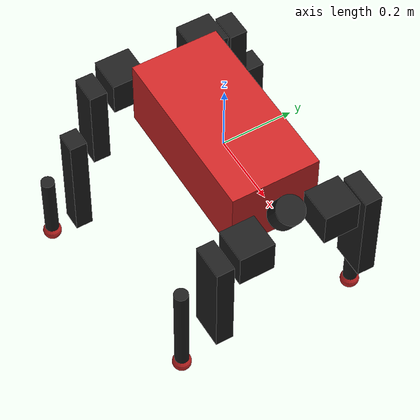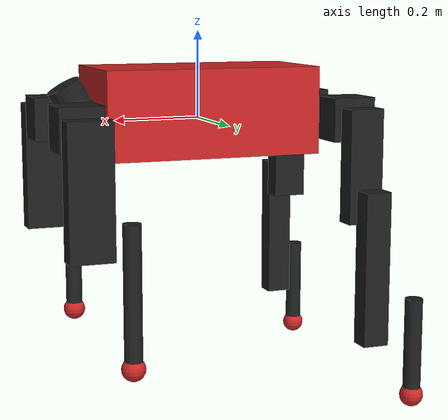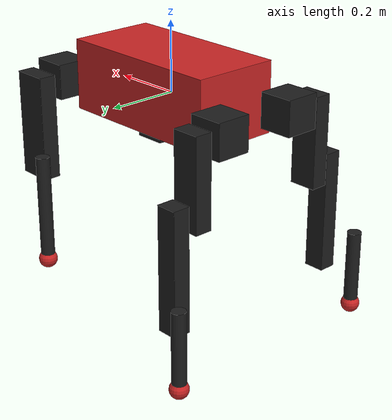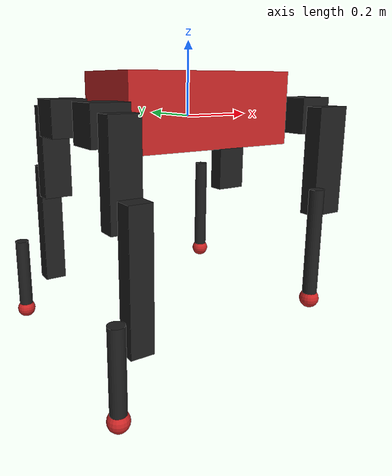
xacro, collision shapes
<?xml version="1.0" encoding="utf-8"?>
<robot xmlns:xacro="http://ros.org/wiki/xacro" name="ContinuO">

  <!-- To make the robot fly -->
  <!-- Wingardium leviossssssssssssssssssa -->

  <!-- INCLUSIONS -->
  <xacro:include filename="$(find f_quadruped_control)/urdf/materials.xacro" />
  <xacro:include filename="$(find f_quadruped_control)/urdf/sensors.xacro" />
  <xacro:include filename="$(find f_quadruped_control)/urdf/legs.xacro" />
  <xacro:include filename="$(find f_quadruped_control)/urdf/transmissions.xacro" />
  <xacro:include filename="$(find f_quadruped_control)/urdf/gazebo.xacro" />

  <!-- LIEN DE BASE -->
  <link name="base_link" />

  <joint name="dummy_joint" type="fixed">
    <parent link="base_link" />
    <child link="base" />
  </joint>

  <link name="base">
    <inertial>
      <origin xyz="-0.02 0.000061 0.008445" rpy="0 0 0" />
      <mass value="15.342" />
      <inertia ixx="0.131477" ixy="-0.000035" ixz="0.000257"
        iyy="0.328587" iyz="0.000031" izz="0.423802" />
    </inertial>
    <visual>
      <origin xyz="0 0 0" rpy="0 0 0" />
      <geometry>
        <mesh filename="package://f_quadruped_control/meshes/base.dae" />
      </geometry>
      <material name="red" />
    </visual>
    <collision>
      <origin xyz="0 0 0.02" rpy="0 0 0" />
      <geometry>
        <box size="0.5 0.25 0.2" />
      </geometry>
    </collision>
  </link>

</robot>

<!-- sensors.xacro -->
<robot xmlns:xacro="http://ros.org/wiki/xacro">

  <!-- LIDAR OUSTER -->
  <link name="os_sensor">
    <inertial>
      <origin xyz="0 0 0" rpy="0 0 0" />
      <mass value="0.425" />
      <inertia ixx="0.0001" ixy="0" ixz="0" iyy="0.0001" iyz="0" izz="0.0001" />
    </inertial>
    <visual>
      <origin xyz="0 0 0" rpy="0 0 0" />
      <geometry>
        <cylinder radius="0.04" length="0.073" />
      </geometry>
      <material name="black" />
    </visual>
    <collision>
      <origin xyz="0 0 0" rpy="0 0 0" />
      <geometry>
        <cylinder radius="0.04" length="0.073" />
      </geometry>
    </collision>
  </link>

  <joint name="base_to_lidar" type="fixed">
    <origin xyz="0.3 0 0.05" rpy="0 0.52 0" />
    <parent link="base" />
    <child link="os_sensor" />
  </joint>

  <!-- IMU -->
  <link name="imu_link">
    <inertial>
      <origin xyz="0 0 0" rpy="0 0 0" />
      <mass value="0.001" />
      <inertia ixx="1e-6" ixy="0" ixz="0" iyy="1e-6" iyz="0" izz="1e-6" />
    </inertial>
    <visual>
      <origin xyz="0 0 0" rpy="0 0 0" />
      <geometry>
        <sphere radius="0.01" />
      </geometry>
    </visual>
    <collision>
      <origin xyz="0 0 0" rpy="0 0 0" />
      <geometry>
        <sphere radius="0.011" />
      </geometry>
    </collision>
  </link>

  <joint name="imu_joint" type="fixed">
    <origin xyz="0 0 0.05" rpy="0 0 0" />
    <parent link="base" />
    <child link="imu_link" />
  </joint>

</robot>

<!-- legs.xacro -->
<robot xmlns:xacro="http://ros.org/wiki/xacro">

  <!-- ======================== FRONT LEFT (FL) ======================== -->
  <link name="FL_SHOULDER">
    <inertial>
      <origin xyz="0.051772 0.021258 -0.000161" rpy="0 0 0" />
      <mass value="1.276" />
      <inertia ixx="0.001862" ixy="0.000034" ixz="0.000001" iyy="0.001745" iyz="0.000000"
        izz="0.001887" />
    </inertial>
    <visual>
      <origin xyz="0 0 0" rpy="0 0 0" />
      <geometry>
        <mesh filename="package://quadruped_description/meshes/FL_SHOULDER.dae" />
      </geometry>
      <material name="black" />
    </visual>
    <collision>
      <origin xyz="0.054 0 0" rpy="0 0 0" />
      <geometry>
        <box size="0.1 0.1 0.1" />
      </geometry>
    </collision>
  </link>
  <joint name="FL_HAA" type="revolute">
    <origin xyz="0.2635 0.12291 0" rpy="0 0 0" />
    <parent link="base" />
    <child link="FL_SHOULDER" />
    <axis xyz="1 0 0" />
    <dynamics damping="0.7" friction="0.0" />
    <limit lower="-3.14" upper="3.14" effort="125.0" velocity="16.75" />
  </joint>

  <link name="FL_UPPER_LEG">
    <inertial>
      <origin xyz="0.000009 0.025634 -0.165001" rpy="0 0 0" />
      <mass value="1.367" />
      <inertia ixx="0.016273" ixy="-0.000000" ixz="0.000012" iyy="0.016691" iyz="0.000130"
        izz="0.001167" />
    </inertial>
    <visual>
      <origin xyz="0 0 0" rpy="0 0 0" />
      <geometry>
        <mesh filename="package://quadruped_description/meshes/FL_UPPER_LEG.dae" />
      </geometry>
      <material name="black2" />
    </visual>
    <collision>
      <origin xyz="0 0.032 -0.1232" rpy="0 0 0" />
      <geometry>
        <box size="0.1 0.05 0.3" />
      </geometry>
    </collision>
  </link>
  <joint name="FL_HFE" type="revolute">
    <origin xyz="0.053259 0.061836 -0.0001687" rpy="0 0 0" />
    <parent link="FL_SHOULDER" />
    <child link="FL_UPPER_LEG" />
    <axis xyz="0 1 0" />
    <dynamics damping="0.9" friction="0.0" />
    <limit lower="-3.14" upper="3.14" effort="120.0" velocity="23.04" />
  </joint>

  <link name="FL_LOWER_LEG">
    <inertial>
      <origin xyz="-0.041308 0.034919 -0.047598" rpy="0 0 0" />
      <mass value="0.759" />
      <inertia ixx="0.007966" ixy="-0.000009" ixz="0.001312" iyy="0.009247" iyz="-0.000002"
        izz="0.001638" />
    </inertial>
    <visual>
      <origin xyz="0 0 0" rpy="0 0 0" />
      <geometry>
        <mesh filename="package://quadruped_description/meshes/FL_LOWER_LEG.dae" />
      </geometry>
      <material name="black3" />
    </visual>
    <collision>
      <origin xyz="-0.0772 0.035 -0.09" rpy="0 0 0" />
      <geometry>
        <cylinder length="0.3" radius="0.02" />
      </geometry>
    </collision>
  </link>
  <joint name="FL_KFE" type="revolute">
    <origin xyz="0 0.0465 -0.2465" rpy="0 0 0" />
    <parent link="FL_UPPER_LEG" />
    <child link="FL_LOWER_LEG" />
    <axis xyz="0 1 0" />
    <dynamics damping="0.9" friction="0.0" />
    <limit lower="-3.14" upper="3.14" effort="120.0" velocity="23.04" />
  </joint>

  <link name="FL_FOOT">
    <inertial>
      <origin xyz="0.035896 -0.000081 0.186367" rpy="0 0 0" />
      <mass value="0.01" />
      <inertia ixx="0.007966" ixy="-0.000009" ixz="0.001312" iyy="0.009247" iyz="-0.000002"
        izz="0.001638" />
    </inertial>
    <visual>
      <origin xyz="0 0 0" rpy="0 0 0" />
      <geometry>
        <mesh filename="package://quadruped_description/meshes/FL_FOOT.dae" />
      </geometry>
      <material name="red" />
    </visual>
    <collision>
      <origin xyz="0 0 -0.02" rpy="0 0 0" />
      <geometry>
        <sphere radius="0.0267" />
      </geometry>
    </collision>
  </link>
  <joint name="FL_FOOT_JOINT" type="fixed">
    <origin xyz="-0.077204 0.035 -0.23396" rpy="0 0 0" />
    <parent link="FL_LOWER_LEG" />
    <child link="FL_FOOT" />
  </joint>

  <!-- ======================== FRONT RIGHT (FR) ======================== -->
  <link name="FR_SHOULDER">
    <inertial>
      <origin xyz="0.051772 -0.021258 -0.000161" rpy="0 0 0" />
      <mass value="1.276" />
      <inertia ixx="0.001862" ixy="-0.000034" ixz="0.000001" iyy="0.001745" iyz="-0.000000"
        izz="0.001887" />
    </inertial>
    <visual>
      <origin xyz="0 0 0" rpy="0 0 0" />
      <geometry>
        <mesh filename="package://quadruped_description/meshes/FR_SHOULDER.dae" />
      </geometry>
      <material name="black" />
    </visual>
    <collision>
      <origin xyz="0.054 0 0" rpy="0 0 0" />
      <geometry>
        <box size="0.1 0.1 0.1" />
      </geometry>
    </collision>
  </link>
  <joint name="FR_HAA" type="revolute">
    <origin xyz="0.2635 -0.12291 0" rpy="0 0 0" />
    <parent link="base" />
    <child link="FR_SHOULDER" />
    <axis xyz="1 0 0" />
    <dynamics damping="0.7" friction="0.0" />
    <limit lower="-3.14" upper="3.14" effort="125.0" velocity="16.75" />
  </joint>

  <link name="FR_UPPER_LEG">
    <inertial>
      <origin xyz="0.000009 -0.025634 -0.165001" rpy="0 0 0" />
      <mass value="1.367" />
      <inertia ixx="0.016273" ixy="0.000000" ixz="0.000012" iyy="0.016691" iyz="-0.000130"
        izz="0.001167" />
    </inertial>
    <visual>
      <origin xyz="0 0 0" rpy="0 0 0" />
      <geometry>
        <mesh filename="package://quadruped_description/meshes/FR_UPPER_LEG.dae" />
      </geometry>
      <material name="black2" />
    </visual>
    <collision>
      <origin xyz="0 -0.028 -0.1232" rpy="0 0 0" />
      <geometry>
        <box size="0.1 0.05 0.3" />
      </geometry>
    </collision>
  </link>
  <joint name="FR_HFE" type="revolute">
    <origin xyz="0.053259 -0.061836 0.0000999" rpy="0 0 0" />
    <parent link="FR_SHOULDER" />
    <child link="FR_UPPER_LEG" />
    <axis xyz="0 1 0" />
    <dynamics damping="0.9" friction="0.0" />
    <limit lower="-3.14" upper="3.14" effort="120.0" velocity="23.04" />
  </joint>

  <link name="FR_LOWER_LEG">
    <inertial>
      <origin xyz="-0.041308 -0.034919 -0.047598" rpy="0 0 0" />
      <mass value="0.759" />
      <inertia ixx="0.007966" ixy="0.000009" ixz="0.001312" iyy="0.009247" iyz="0.000002"
        izz="0.001638" />
    </inertial>
    <visual>
      <origin xyz="0 0 0" rpy="0 0 0" />
      <geometry>
        <mesh filename="package://quadruped_description/meshes/FR_LOWER_LEG.dae" />
      </geometry>
      <material name="black3" />
    </visual>
    <collision>
      <origin xyz="-0.0772 -0.035 -0.09" rpy="0 0 0" />
      <geometry>
        <cylinder length="0.3" radius="0.02" />
      </geometry>
    </collision>
  </link>
  <joint name="FR_KFE" type="revolute">
    <origin xyz="0 -0.0465 -0.2465" rpy="0 0 0" />
    <parent link="FR_UPPER_LEG" />
    <child link="FR_LOWER_LEG" />
    <axis xyz="0 1 0" />
    <dynamics damping="0.9" friction="0.0" />
    <limit lower="-3.14" upper="3.14" effort="120.0" velocity="23.04" />
  </joint>

  <link name="FR_FOOT">
    <inertial>
      <origin xyz="0.035896 0.000081 0.186367" rpy="0 0 0" />
      <mass value="0.01" />
      <inertia ixx="0.007966" ixy="0.000009" ixz="0.001312" iyy="0.009247" iyz="0.000002"
        izz="0.001638" />
    </inertial>
    <visual>
      <origin xyz="0 0 0" rpy="0 0 0" />
      <geometry>
        <mesh filename="package://quadruped_description/meshes/FR_FOOT.dae" />
      </geometry>
      <material name="red" />
    </visual>
    <collision>
      <origin xyz="0 0 -0.02" rpy="0 0 0" />
      <geometry>
        <sphere radius="0.0267" />
      </geometry>
    </collision>
  </link>
  <joint name="FR_FOOT_JOINT" type="fixed">
    <origin xyz="-0.07715 -0.035 -0.23396" rpy="0 0 0" />
    <parent link="FR_LOWER_LEG" />
    <child link="FR_FOOT" />
  </joint>

  <!-- ======================== HIND LEFT (HL) ======================== -->
  <link name="HL_SHOULDER">
    <inertial>
      <origin xyz="-0.051779 0.021258 0.000042" rpy="0 0 0" />
      <mass value="1.276" />
      <inertia ixx="0.001862" ixy="-0.000034" ixz="-0.000000" iyy="0.001745" iyz="-0.000000"
        izz="0.001886" />
    </inertial>
    <visual>
      <origin xyz="0 0 0" rpy="0 0 0" />
      <geometry>
        <mesh filename="package://quadruped_description/meshes/HL_SHOULDER.dae" />
      </geometry>
      <material name="black" />
    </visual>
    <collision>
      <origin xyz="-0.054 0 0" rpy="0 0 0" />
      <geometry>
        <box size="0.1 0.1 0.1" />
      </geometry>
    </collision>
  </link>
  <joint name="HL_HAA" type="revolute">
    <origin xyz="-0.2635 0.12291 0" rpy="0 0 0" />
    <parent link="base" />
    <child link="HL_SHOULDER" />
    <axis xyz="1 0 0" />
    <dynamics damping="0.7" friction="0.0" />
    <limit lower="-3.14" upper="3.14" effort="125.0" velocity="16.75" />
  </joint>

  <link name="HL_UPPER_LEG">
    <inertial>
      <origin xyz="0.000003 0.025470 -0.134787" rpy="0 0 0" />
      <mass value="1.315" />
      <inertia ixx="0.011053" ixy="-0.000000" ixz="0.000013" iyy="0.011463" iyz="0.000105"
        izz="0.001146" />
    </inertial>
    <visual>
      <origin xyz="0 0 0" rpy="0 0 0" />
      <geometry>
        <mesh filename="package://quadruped_description/meshes/HL_UPPER_LEG.dae" />
      </geometry>
      <material name="black1" />
    </visual>
    <collision>
      <origin xyz="0 0.028 -0.1005" rpy="0 0 0" />
      <geometry>
        <box size="0.08 0.05 0.26" />
      </geometry>
    </collision>
  </link>
  <joint name="HL_HFE" type="revolute">
    <origin xyz="-0.053259 0.061836 0.0000999" rpy="0 0 0" />
    <parent link="HL_SHOULDER" />
    <child link="HL_UPPER_LEG" />
    <axis xyz="0 1 0" />
    <dynamics damping="0.9" friction="0.0" />
    <limit lower="-3.14" upper="3.14" effort="125.0" velocity="16.75" />
  </joint>

  <link name="HL_LOWER_LEG">
    <inertial>
      <origin xyz="0.000005 0.041724 -0.160773" rpy="0 0 0" />
      <mass value="1.406" />
      <inertia ixx="0.017322" ixy="-0.000000" ixz="0.000013" iyy="0.017702" iyz="-0.000074"
        izz="0.001218" />
    </inertial>
    <visual>
      <origin xyz="0 0 0" rpy="0 0 0" />
      <geometry>
        <mesh filename="package://quadruped_description/meshes/HL_LOWER_LEG.dae" />
      </geometry>
      <material name="black2" />
    </visual>
    <collision>
      <origin xyz="0 0.045 -0.1233" rpy="0 0 0" />
      <geometry>
        <box size="0.06 0.05 0.35" />
      </geometry>
    </collision>
  </link>
  <joint name="HL_KFE" type="revolute">
    <origin xyz="0 0.0465 -0.201" rpy="0 0 0" />
    <parent link="HL_UPPER_LEG" />
    <child link="HL_LOWER_LEG" />
    <axis xyz="0 1 0" />
    <dynamics damping="0.9" friction="0.0" />
    <limit lower="-3.14" upper="3.14" effort="120.0" velocity="23.04" />
  </joint>

  <link name="HL_SHANK">
    <inertial>
      <origin xyz="-0.040122 0.034916 -0.027409" rpy="0 0 0" />
      <mass value="0.734" />
      <inertia ixx="0.003597" ixy="-0.000009" ixz="0.000762" iyy="0.004846" iyz="-0.000001"
        izz="0.001602" />
    </inertial>
    <visual>
      <origin xyz="0 0 0" rpy="0 0 0" />
      <geometry>
        <mesh filename="package://quadruped_description/meshes/HL_SHANK.dae" />
      </geometry>
      <material name="black3" />
    </visual>
    <collision>
      <origin xyz="-0.0772 0.035 -0.045" rpy="0 0 0" />
      <geometry>
        <cylinder length="0.21" radius="0.02" />
      </geometry>
    </collision>
  </link>
  <joint name="HL_AFE" type="revolute">
    <origin xyz="0 0.0635 -0.2465" rpy="0 0 0" />
    <parent link="HL_LOWER_LEG" />
    <child link="HL_SHANK" />
    <axis xyz="0 1 0" />
    <dynamics damping="0.9" friction="0.0" />
    <limit lower="-3.14" upper="3.14" effort="120.0" velocity="23.04" />
  </joint>

  <link name="HL_FOOT">
    <inertial>
      <origin xyz="0.037082 -0.000084 0.116555" rpy="0 0 0" />
      <mass value="0.01" />
      <inertia ixx="0.003597" ixy="-0.000009" ixz="0.000762" iyy="0.004846" iyz="-0.000001"
        izz="0.001602" />
    </inertial>
    <visual>
      <origin xyz="0 0 0" rpy="0 0 0" />
      <geometry>
        <mesh filename="package://quadruped_description/meshes/HL_FOOT.dae" />
      </geometry>
      <material name="red" />
    </visual>
    <collision>
      <origin xyz="0 0 -0.02" rpy="0 0 0" />
      <geometry>
        <sphere radius="0.0267" />
      </geometry>
    </collision>
  </link>
  <joint name="HL_FOOT_JOINT" type="fixed">
    <origin xyz="-0.077204 0.035 -0.14396" rpy="0 0 0" />
    <parent link="HL_SHANK" />
    <child link="HL_FOOT" />
  </joint>

  <!-- ======================== HIND RIGHT (HR) ======================== -->
  <link name="HR_SHOULDER">
    <inertial>
      <origin xyz="-0.051779 -0.021258 0.000042" rpy="0 0 0" />
      <mass value="1.276" />
      <inertia ixx="0.001862" ixy="0.000034" ixz="-0.000000" iyy="0.001745" iyz="0.000000"
        izz="0.001886" />
    </inertial>
    <visual>
      <origin xyz="0 0 0" rpy="0 0 0" />
      <geometry>
        <mesh filename="package://quadruped_description/meshes/HR_SHOULDER.dae" />
      </geometry>
      <material name="black" />
    </visual>
    <collision>
      <origin xyz="-0.054 0 0" rpy="0 0 0" />
      <geometry>
        <box size="0.1 0.1 0.1" />
      </geometry>
    </collision>
  </link>
  <joint name="HR_HAA" type="revolute">
    <origin xyz="-0.2635 -0.12291 0" rpy="0 0 0" />
    <parent link="base" />
    <child link="HR_SHOULDER" />
    <axis xyz="1 0 0" />
    <dynamics damping="0.7" friction="0.0" />
    <limit lower="-3.14" upper="3.14" effort="125.0" velocity="16.75" />
  </joint>

  <link name="HR_UPPER_LEG">
    <inertial>
      <origin xyz="0.000003 -0.025470 -0.134787" rpy="0 0 0" />
      <mass value="1.315" />
      <inertia ixx="0.011053" ixy="0.000000" ixz="0.000013" iyy="0.011463" iyz="-0.000105"
        izz="0.001146" />
    </inertial>
    <visual>
      <origin xyz="0 0 0" rpy="0 0 0" />
      <geometry>
        <mesh filename="package://quadruped_description/meshes/HR_UPPER_LEG.dae" />
      </geometry>
      <material name="black1" />
    </visual>
    <collision>
      <origin xyz="0 -0.028 -0.1005" rpy="0 0 0" />
      <geometry>
        <box size="0.08 0.05 0.26" />
      </geometry>
    </collision>
  </link>
  <joint name="HR_HFE" type="revolute">
    <origin xyz="-0.053259 -0.061836 -0.0001687" rpy="0 0 0" />
    <parent link="HR_SHOULDER" />
    <child link="HR_UPPER_LEG" />
    <axis xyz="0 1 0" />
    <dynamics damping="0.9" friction="0.0" />
    <limit lower="-3.14" upper="3.14" effort="125.0" velocity="16.75" />
  </joint>

  <link name="HR_LOWER_LEG">
    <inertial>
      <origin xyz="-0.040122 -0.034916 -0.027409" rpy="0 0 0" />
      <mass value="1.406" />
      <inertia ixx="0.003597" ixy="0.000009" ixz="0.000762" iyy="0.004846" iyz="0.000001"
        izz="0.001602" />
    </inertial>
    <visual>
      <origin xyz="0 0 0" rpy="0 0 0" />
      <geometry>
        <mesh filename="package://quadruped_description/meshes/HR_LOWER_LEG.dae" />
      </geometry>
      <material name="black2" />
    </visual>
    <collision>
      <origin xyz="0 -0.045 -0.1232" rpy="0 0 0" />
      <geometry>
        <box size="0.06 0.05 0.35" />
      </geometry>
    </collision>
  </link>
  <joint name="HR_KFE" type="revolute">
    <origin xyz="0 -0.0465 -0.201" rpy="0 0 0" />
    <parent link="HR_UPPER_LEG" />
    <child link="HR_LOWER_LEG" />
    <axis xyz="0 1 0" />
    <dynamics damping="0.9" friction="0.0" />
    <limit lower="-3.14" upper="3.14" effort="120.0" velocity="23.04" />
  </joint>

  <link name="HR_SHANK">
    <inertial>
      <origin xyz="-0.040122 -0.034916 -0.027409" rpy="0 0 0" />
      <mass value="0.734" />
      <inertia ixx="0.003597" ixy="0.000009" ixz="0.000762" iyy="0.004846" iyz="0.000001"
        izz="0.001602" />
    </inertial>
    <visual>
      <origin xyz="0 0 0" rpy="0 0 0" />
      <geometry>
        <mesh filename="package://quadruped_description/meshes/HR_SHANK.dae" />
      </geometry>
      <material name="black3" />
    </visual>
    <collision>
      <origin xyz="-0.0772 -0.035 -0.045" rpy="0 0 0" />
      <geometry>
        <cylinder length="0.21" radius="0.02" />
      </geometry>
    </collision>
  </link>
  <joint name="HR_AFE" type="revolute">
    <origin xyz="0 -0.0635 -0.2465" rpy="0 0 0" />
    <parent link="HR_LOWER_LEG" />
    <child link="HR_SHANK" />
    <axis xyz="0 1 0" />
    <dynamics damping="0.9" friction="0.0" />
    <limit lower="-3.14" upper="3.14" effort="120.0" velocity="23.04" />
  </joint>

  <link name="HR_FOOT">
    <inertial>
      <origin xyz="0.037082 0.000084 0.116555" rpy="0 0 0" />
      <mass value="0.01" />
      <inertia ixx="0.003597" ixy="0.000009" ixz="0.000762" iyy="0.004846" iyz="0.000001"
        izz="0.001602" />
    </inertial>
    <visual>
      <origin xyz="0 0 0" rpy="0 0 0" />
      <geometry>
        <mesh filename="package://quadruped_description/meshes/HR_FOOT.dae" />
      </geometry>
      <material name="red" />
    </visual>
    <collision>
      <origin xyz="0 0 -0.02" rpy="0 0 0" />
      <geometry>
        <sphere radius="0.0267" />
      </geometry>
    </collision>
  </link>
  <joint name="HR_FOOT_JOINT" type="fixed">
    <origin xyz="-0.077203 -0.035 -0.14396" rpy="0 0 0" />
    <parent link="HR_SHANK" />
    <child link="HR_FOOT" />
  </joint>

</robot>
